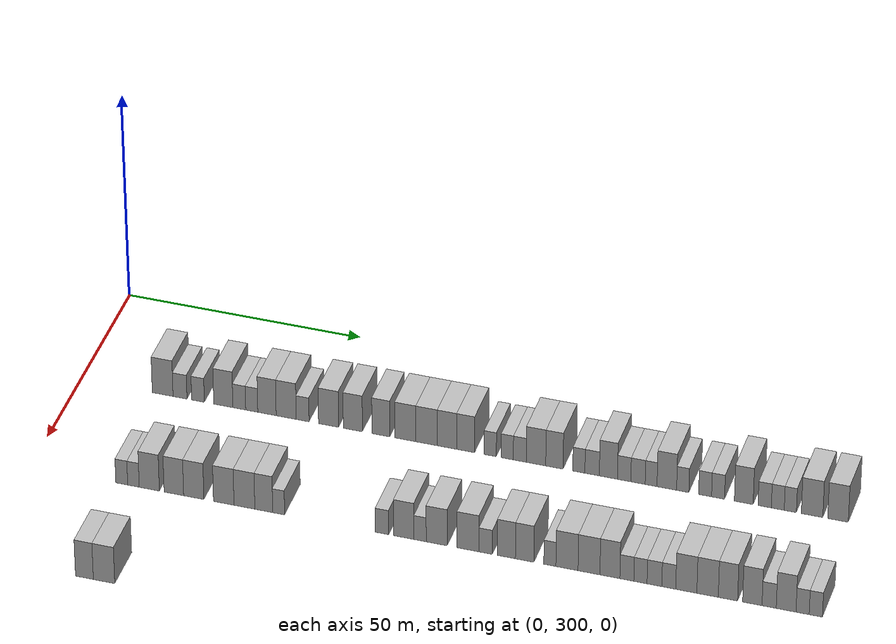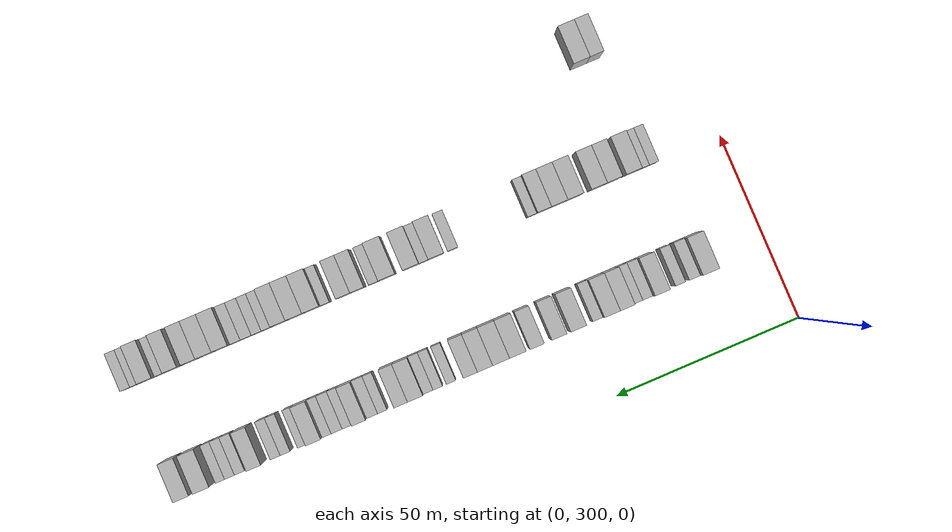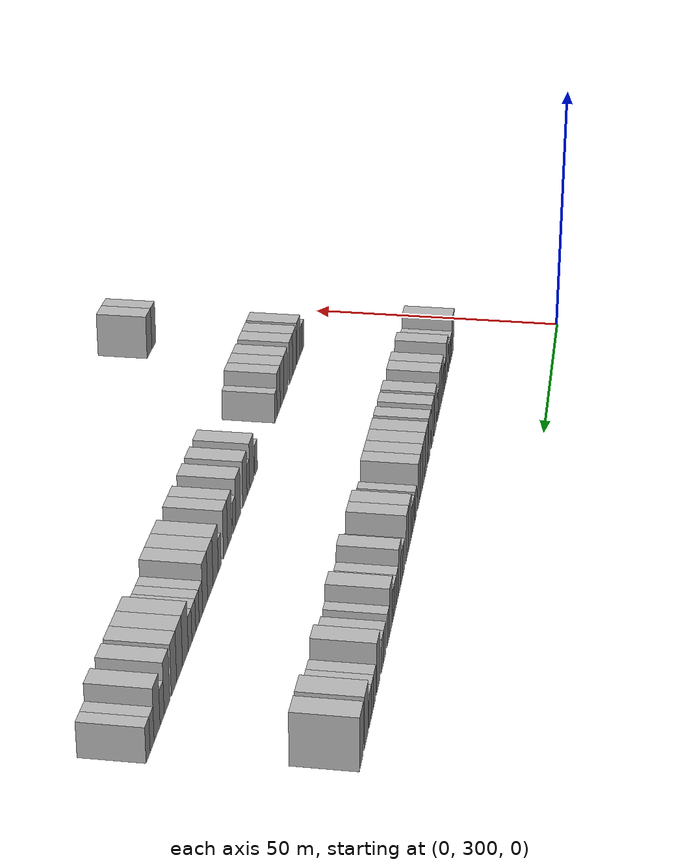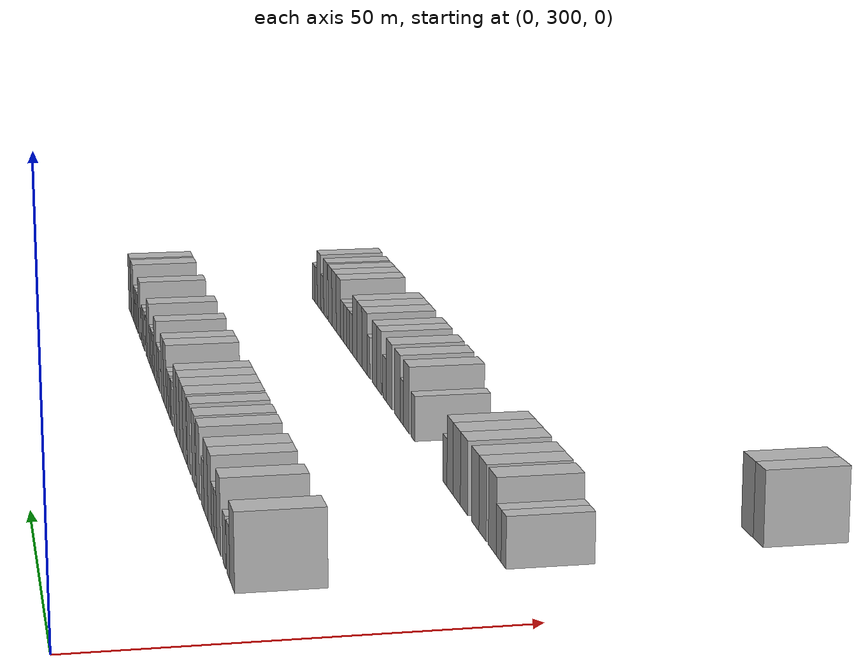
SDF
<sdf version="1.6">
 <world name="default">
  <model name="building_189">
   <static>1</static>
   <pose>25.0000 317.5316 0 0.000000 0.000000 0.000000</pose>
   <link name="link">
    <pose>0 0 4.50 0 0 0</pose>
    <collision name="collision"><geometry><box><size>10.0000 4.4294 9.0000</size></box></geometry></collision>
    <visual name="visual">
     <cast_shadows>0</cast_shadows>
     <geometry><box><size>10.0000 4.4294 9.0000</size></box></geometry>
     <material>
      <script>
       <uri>model://HANNAS_wall/materials/scripts</uri>
       <uri>model://HANNAS_wall/materials/textures</uri>
       <name>vrc/HANNAS_wall</name>
      </script>
     </material>
    </visual>
   </link>
  </model>
  <model name="building_190">
   <static>1</static>
   <pose>25.0000 321.2333 0 0.000000 0.000000 0.000000</pose>
   <link name="link">
    <pose>0 0 3.00 0 0 0</pose>
    <collision name="collision"><geometry><box><size>10.0000 2.9739 6.0000</size></box></geometry></collision>
    <visual name="visual">
     <cast_shadows>0</cast_shadows>
     <geometry><box><size>10.0000 2.9739 6.0000</size></box></geometry>
     <material>
      <script>
       <uri>model://HANNAS_wall/materials/scripts</uri>
       <uri>model://HANNAS_wall/materials/textures</uri>
       <name>vrc/HANNAS_wall</name>
      </script>
     </material>
    </visual>
   </link>
  </model>
  <model name="building_191">
   <static>1</static>
   <pose>25.0000 325.0715 0 0.000000 0.000000 0.000000</pose>
   <link name="link">
    <pose>0 0 3.00 0 0 0</pose>
    <collision name="collision"><geometry><box><size>10.0000 2.7024 6.0000</size></box></geometry></collision>
    <visual name="visual">
     <cast_shadows>0</cast_shadows>
     <geometry><box><size>10.0000 2.7024 6.0000</size></box></geometry>
     <material>
      <script>
       <uri>model://HANNAS_wall/materials/scripts</uri>
       <uri>model://HANNAS_wall/materials/textures</uri>
       <name>vrc/HANNAS_wall</name>
      </script>
     </material>
    </visual>
   </link>
  </model>
  <model name="building_192">
   <static>1</static>
   <pose>25.0000 330.4566 0 0.000000 0.000000 0.000000</pose>
   <link name="link">
    <pose>0 0 4.50 0 0 0</pose>
    <collision name="collision"><geometry><box><size>10.0000 4.0677 9.0000</size></box></geometry></collision>
    <visual name="visual">
     <cast_shadows>0</cast_shadows>
     <geometry><box><size>10.0000 4.0677 9.0000</size></box></geometry>
     <material>
      <script>
       <uri>model://HANNAS_wall/materials/scripts</uri>
       <uri>model://HANNAS_wall/materials/textures</uri>
       <name>vrc/HANNAS_wall</name>
      </script>
     </material>
    </visual>
   </link>
  </model>
  <model name="building_193">
   <static>1</static>
   <pose>25.0000 333.8550 0 0.000000 0.000000 0.000000</pose>
   <link name="link">
    <pose>0 0 3.00 0 0 0</pose>
    <collision name="collision"><geometry><box><size>10.0000 2.7291 6.0000</size></box></geometry></collision>
    <visual name="visual">
     <cast_shadows>0</cast_shadows>
     <geometry><box><size>10.0000 2.7291 6.0000</size></box></geometry>
     <material>
      <script>
       <uri>model://HANNAS_wall/materials/scripts</uri>
       <uri>model://HANNAS_wall/materials/textures</uri>
       <name>vrc/HANNAS_wall</name>
      </script>
     </material>
    </visual>
   </link>
  </model>
  <model name="building_194">
   <static>1</static>
   <pose>25.0000 336.4991 0 0.000000 0.000000 0.000000</pose>
   <link name="link">
    <pose>0 0 3.00 0 0 0</pose>
    <collision name="collision"><geometry><box><size>10.0000 2.5592 6.0000</size></box></geometry></collision>
    <visual name="visual">
     <cast_shadows>0</cast_shadows>
     <geometry><box><size>10.0000 2.5592 6.0000</size></box></geometry>
     <material>
      <script>
       <uri>model://HANNAS_wall/materials/scripts</uri>
       <uri>model://HANNAS_wall/materials/textures</uri>
       <name>vrc/HANNAS_wall</name>
      </script>
     </material>
    </visual>
   </link>
  </model>
  <model name="building_195">
   <static>1</static>
   <pose>25.0000 339.7267 0 0.000000 0.000000 0.000000</pose>
   <link name="link">
    <pose>0 0 4.50 0 0 0</pose>
    <collision name="collision"><geometry><box><size>10.0000 3.8960 9.0000</size></box></geometry></collision>
    <visual name="visual">
     <cast_shadows>0</cast_shadows>
     <geometry><box><size>10.0000 3.8960 9.0000</size></box></geometry>
     <material>
      <script>
       <uri>model://HANNAS_wall/materials/scripts</uri>
       <uri>model://HANNAS_wall/materials/textures</uri>
       <name>vrc/HANNAS_wall</name>
      </script>
     </material>
    </visual>
   </link>
  </model>
  <model name="building_196">
   <static>1</static>
   <pose>25.0000 343.7983 0 0.000000 0.000000 0.000000</pose>
   <link name="link">
    <pose>0 0 4.50 0 0 0</pose>
    <collision name="collision"><geometry><box><size>10.0000 4.2473 9.0000</size></box></geometry></collision>
    <visual name="visual">
     <cast_shadows>0</cast_shadows>
     <geometry><box><size>10.0000 4.2473 9.0000</size></box></geometry>
     <material>
      <script>
       <uri>model://HANNAS_wall/materials/scripts</uri>
       <uri>model://HANNAS_wall/materials/textures</uri>
       <name>vrc/HANNAS_wall</name>
      </script>
     </material>
    </visual>
   </link>
  </model>
  <model name="building_197">
   <static>1</static>
   <pose>25.0000 347.2807 0 0.000000 0.000000 0.000000</pose>
   <link name="link">
    <pose>0 0 3.00 0 0 0</pose>
    <collision name="collision"><geometry><box><size>10.0000 2.7175 6.0000</size></box></geometry></collision>
    <visual name="visual">
     <cast_shadows>0</cast_shadows>
     <geometry><box><size>10.0000 2.7175 6.0000</size></box></geometry>
     <material>
      <script>
       <uri>model://HANNAS_wall/materials/scripts</uri>
       <uri>model://HANNAS_wall/materials/textures</uri>
       <name>vrc/HANNAS_wall</name>
      </script>
     </material>
    </visual>
   </link>
  </model>
  <model name="building_198">
   <static>1</static>
   <pose>25.0000 352.7499 0 0.000000 0.000000 0.000000</pose>
   <link name="link">
    <pose>0 0 4.50 0 0 0</pose>
    <collision name="collision"><geometry><box><size>10.0000 4.2210 9.0000</size></box></geometry></collision>
    <visual name="visual">
     <cast_shadows>0</cast_shadows>
     <geometry><box><size>10.0000 4.2210 9.0000</size></box></geometry>
     <material>
      <script>
       <uri>model://HANNAS_wall/materials/scripts</uri>
       <uri>model://HANNAS_wall/materials/textures</uri>
       <name>vrc/HANNAS_wall</name>
      </script>
     </material>
    </visual>
   </link>
  </model>
  <model name="building_199">
   <static>1</static>
   <pose>25.0000 357.8713 0 0.000000 0.000000 0.000000</pose>
   <link name="link">
    <pose>0 0 4.50 0 0 0</pose>
    <collision name="collision"><geometry><box><size>10.0000 4.0218 9.0000</size></box></geometry></collision>
    <visual name="visual">
     <cast_shadows>0</cast_shadows>
     <geometry><box><size>10.0000 4.0218 9.0000</size></box></geometry>
     <material>
      <script>
       <uri>model://HANNAS_wall/materials/scripts</uri>
       <uri>model://HANNAS_wall/materials/textures</uri>
       <name>vrc/HANNAS_wall</name>
      </script>
     </material>
    </visual>
   </link>
  </model>
  <model name="building_200">
   <static>1</static>
   <pose>25.0000 363.7776 0 0.000000 0.000000 0.000000</pose>
   <link name="link">
    <pose>0 0 4.50 0 0 0</pose>
    <collision name="collision"><geometry><box><size>10.0000 3.7909 9.0000</size></box></geometry></collision>
    <visual name="visual">
     <cast_shadows>0</cast_shadows>
     <geometry><box><size>10.0000 3.7909 9.0000</size></box></geometry>
     <material>
      <script>
       <uri>model://HANNAS_wall/materials/scripts</uri>
       <uri>model://HANNAS_wall/materials/textures</uri>
       <name>vrc/HANNAS_wall</name>
      </script>
     </material>
    </visual>
   </link>
  </model>
  <model name="building_201">
   <static>1</static>
   <pose>25.0000 368.8824 0 0.000000 0.000000 0.000000</pose>
   <link name="link">
    <pose>0 0 4.50 0 0 0</pose>
    <collision name="collision"><geometry><box><size>10.0000 4.4186 9.0000</size></box></geometry></collision>
    <visual name="visual">
     <cast_shadows>0</cast_shadows>
     <geometry><box><size>10.0000 4.4186 9.0000</size></box></geometry>
     <material>
      <script>
       <uri>model://HANNAS_wall/materials/scripts</uri>
       <uri>model://HANNAS_wall/materials/textures</uri>
       <name>vrc/HANNAS_wall</name>
      </script>
     </material>
    </visual>
   </link>
  </model>
  <model name="building_202">
   <static>1</static>
   <pose>25.0000 373.3284 0 0.000000 0.000000 0.000000</pose>
   <link name="link">
    <pose>0 0 4.50 0 0 0</pose>
    <collision name="collision"><geometry><box><size>10.0000 4.4735 9.0000</size></box></geometry></collision>
    <visual name="visual">
     <cast_shadows>0</cast_shadows>
     <geometry><box><size>10.0000 4.4735 9.0000</size></box></geometry>
     <material>
      <script>
       <uri>model://HANNAS_wall/materials/scripts</uri>
       <uri>model://HANNAS_wall/materials/textures</uri>
       <name>vrc/HANNAS_wall</name>
      </script>
     </material>
    </visual>
   </link>
  </model>
  <model name="building_203">
   <static>1</static>
   <pose>25.0000 377.6011 0 0.000000 0.000000 0.000000</pose>
   <link name="link">
    <pose>0 0 4.50 0 0 0</pose>
    <collision name="collision"><geometry><box><size>10.0000 4.0720 9.0000</size></box></geometry></collision>
    <visual name="visual">
     <cast_shadows>0</cast_shadows>
     <geometry><box><size>10.0000 4.0720 9.0000</size></box></geometry>
     <material>
      <script>
       <uri>model://HANNAS_wall/materials/scripts</uri>
       <uri>model://HANNAS_wall/materials/textures</uri>
       <name>vrc/HANNAS_wall</name>
      </script>
     </material>
    </visual>
   </link>
  </model>
  <model name="building_204">
   <static>1</static>
   <pose>25.0000 381.5115 0 0.000000 0.000000 0.000000</pose>
   <link name="link">
    <pose>0 0 4.50 0 0 0</pose>
    <collision name="collision"><geometry><box><size>10.0000 3.7486 9.0000</size></box></geometry></collision>
    <visual name="visual">
     <cast_shadows>0</cast_shadows>
     <geometry><box><size>10.0000 3.7486 9.0000</size></box></geometry>
     <material>
      <script>
       <uri>model://HANNAS_wall/materials/scripts</uri>
       <uri>model://HANNAS_wall/materials/textures</uri>
       <name>vrc/HANNAS_wall</name>
      </script>
     </material>
    </visual>
   </link>
  </model>
  <model name="building_205">
   <static>1</static>
   <pose>25.0000 386.6459 0 0.000000 0.000000 0.000000</pose>
   <link name="link">
    <pose>0 0 3.00 0 0 0</pose>
    <collision name="collision"><geometry><box><size>10.0000 2.5202 6.0000</size></box></geometry></collision>
    <visual name="visual">
     <cast_shadows>0</cast_shadows>
     <geometry><box><size>10.0000 2.5202 6.0000</size></box></geometry>
     <material>
      <script>
       <uri>model://HANNAS_wall/materials/scripts</uri>
       <uri>model://HANNAS_wall/materials/textures</uri>
       <name>vrc/HANNAS_wall</name>
      </script>
     </material>
    </visual>
   </link>
  </model>
  <model name="building_206">
   <static>1</static>
   <pose>25.0000 390.1766 0 0.000000 0.000000 0.000000</pose>
   <link name="link">
    <pose>0 0 3.00 0 0 0</pose>
    <collision name="collision"><geometry><box><size>10.0000 2.5413 6.0000</size></box></geometry></collision>
    <visual name="visual">
     <cast_shadows>0</cast_shadows>
     <geometry><box><size>10.0000 2.5413 6.0000</size></box></geometry>
     <material>
      <script>
       <uri>model://HANNAS_wall/materials/scripts</uri>
       <uri>model://HANNAS_wall/materials/textures</uri>
       <name>vrc/HANNAS_wall</name>
      </script>
     </material>
    </visual>
   </link>
  </model>
  <model name="building_207">
   <static>1</static>
   <pose>25.0000 392.7797 0 0.000000 0.000000 0.000000</pose>
   <link name="link">
    <pose>0 0 3.00 0 0 0</pose>
    <collision name="collision"><geometry><box><size>10.0000 2.6650 6.0000</size></box></geometry></collision>
    <visual name="visual">
     <cast_shadows>0</cast_shadows>
     <geometry><box><size>10.0000 2.6650 6.0000</size></box></geometry>
     <material>
      <script>
       <uri>model://HANNAS_wall/materials/scripts</uri>
       <uri>model://HANNAS_wall/materials/textures</uri>
       <name>vrc/HANNAS_wall</name>
      </script>
     </material>
    </visual>
   </link>
  </model>
  <model name="building_208">
   <static>1</static>
   <pose>25.0000 396.1371 0 0.000000 0.000000 0.000000</pose>
   <link name="link">
    <pose>0 0 4.50 0 0 0</pose>
    <collision name="collision"><geometry><box><size>10.0000 4.0498 9.0000</size></box></geometry></collision>
    <visual name="visual">
     <cast_shadows>0</cast_shadows>
     <geometry><box><size>10.0000 4.0498 9.0000</size></box></geometry>
     <material>
      <script>
       <uri>model://HANNAS_wall/materials/scripts</uri>
       <uri>model://HANNAS_wall/materials/textures</uri>
       <name>vrc/HANNAS_wall</name>
      </script>
     </material>
    </visual>
   </link>
  </model>
  <model name="building_209">
   <static>1</static>
   <pose>25.0000 399.9664 0 0.000000 0.000000 0.000000</pose>
   <link name="link">
    <pose>0 0 4.50 0 0 0</pose>
    <collision name="collision"><geometry><box><size>10.0000 3.6089 9.0000</size></box></geometry></collision>
    <visual name="visual">
     <cast_shadows>0</cast_shadows>
     <geometry><box><size>10.0000 3.6089 9.0000</size></box></geometry>
     <material>
      <script>
       <uri>model://HANNAS_wall/materials/scripts</uri>
       <uri>model://HANNAS_wall/materials/textures</uri>
       <name>vrc/HANNAS_wall</name>
      </script>
     </material>
    </visual>
   </link>
  </model>
  <model name="building_210">
   <static>1</static>
   <pose>25.0000 405.0241 0 0.000000 0.000000 0.000000</pose>
   <link name="link">
    <pose>0 0 3.00 0 0 0</pose>
    <collision name="collision"><geometry><box><size>10.0000 2.5063 6.0000</size></box></geometry></collision>
    <visual name="visual">
     <cast_shadows>0</cast_shadows>
     <geometry><box><size>10.0000 2.5063 6.0000</size></box></geometry>
     <material>
      <script>
       <uri>model://HANNAS_wall/materials/scripts</uri>
       <uri>model://HANNAS_wall/materials/textures</uri>
       <name>vrc/HANNAS_wall</name>
      </script>
     </material>
    </visual>
   </link>
  </model>
  <model name="building_211">
   <static>1</static>
   <pose>25.0000 407.7696 0 0.000000 0.000000 0.000000</pose>
   <link name="link">
    <pose>0 0 3.00 0 0 0</pose>
    <collision name="collision"><geometry><box><size>10.0000 2.9848 6.0000</size></box></geometry></collision>
    <visual name="visual">
     <cast_shadows>0</cast_shadows>
     <geometry><box><size>10.0000 2.9848 6.0000</size></box></geometry>
     <material>
      <script>
       <uri>model://HANNAS_wall/materials/scripts</uri>
       <uri>model://HANNAS_wall/materials/textures</uri>
       <name>vrc/HANNAS_wall</name>
      </script>
     </material>
    </visual>
   </link>
  </model>
  <model name="building_212">
   <static>1</static>
   <pose>25.0000 411.1289 0 0.000000 0.000000 0.000000</pose>
   <link name="link">
    <pose>0 0 4.50 0 0 0</pose>
    <collision name="collision"><geometry><box><size>10.0000 3.7337 9.0000</size></box></geometry></collision>
    <visual name="visual">
     <cast_shadows>0</cast_shadows>
     <geometry><box><size>10.0000 3.7337 9.0000</size></box></geometry>
     <material>
      <script>
       <uri>model://HANNAS_wall/materials/scripts</uri>
       <uri>model://HANNAS_wall/materials/textures</uri>
       <name>vrc/HANNAS_wall</name>
      </script>
     </material>
    </visual>
   </link>
  </model>
  <model name="building_213">
   <static>1</static>
   <pose>25.0000 414.3785 0 0.000000 0.000000 0.000000</pose>
   <link name="link">
    <pose>0 0 3.00 0 0 0</pose>
    <collision name="collision"><geometry><box><size>10.0000 2.7655 6.0000</size></box></geometry></collision>
    <visual name="visual">
     <cast_shadows>0</cast_shadows>
     <geometry><box><size>10.0000 2.7655 6.0000</size></box></geometry>
     <material>
      <script>
       <uri>model://HANNAS_wall/materials/scripts</uri>
       <uri>model://HANNAS_wall/materials/textures</uri>
       <name>vrc/HANNAS_wall</name>
      </script>
     </material>
    </visual>
   </link>
  </model>
  <model name="building_214">
   <static>1</static>
   <pose>25.0000 417.2346 0 0.000000 0.000000 0.000000</pose>
   <link name="link">
    <pose>0 0 3.00 0 0 0</pose>
    <collision name="collision"><geometry><box><size>10.0000 2.9469 6.0000</size></box></geometry></collision>
    <visual name="visual">
     <cast_shadows>0</cast_shadows>
     <geometry><box><size>10.0000 2.9469 6.0000</size></box></geometry>
     <material>
      <script>
       <uri>model://HANNAS_wall/materials/scripts</uri>
       <uri>model://HANNAS_wall/materials/textures</uri>
       <name>vrc/HANNAS_wall</name>
      </script>
     </material>
    </visual>
   </link>
  </model>
  <model name="building_215">
   <static>1</static>
   <pose>25.0000 419.9246 0 0.000000 0.000000 0.000000</pose>
   <link name="link">
    <pose>0 0 3.00 0 0 0</pose>
    <collision name="collision"><geometry><box><size>10.0000 2.4331 6.0000</size></box></geometry></collision>
    <visual name="visual">
     <cast_shadows>0</cast_shadows>
     <geometry><box><size>10.0000 2.4331 6.0000</size></box></geometry>
     <material>
      <script>
       <uri>model://HANNAS_wall/materials/scripts</uri>
       <uri>model://HANNAS_wall/materials/textures</uri>
       <name>vrc/HANNAS_wall</name>
      </script>
     </material>
    </visual>
   </link>
  </model>
  <model name="building_216">
   <static>1</static>
   <pose>25.0000 423.1558 0 0.000000 0.000000 0.000000</pose>
   <link name="link">
    <pose>0 0 4.50 0 0 0</pose>
    <collision name="collision"><geometry><box><size>10.0000 4.0292 9.0000</size></box></geometry></collision>
    <visual name="visual">
     <cast_shadows>0</cast_shadows>
     <geometry><box><size>10.0000 4.0292 9.0000</size></box></geometry>
     <material>
      <script>
       <uri>model://HANNAS_wall/materials/scripts</uri>
       <uri>model://HANNAS_wall/materials/textures</uri>
       <name>vrc/HANNAS_wall</name>
      </script>
     </material>
    </visual>
   </link>
  </model>
  <model name="building_217">
   <static>1</static>
   <pose>25.0000 426.4271 0 0.000000 0.000000 0.000000</pose>
   <link name="link">
    <pose>0 0 3.00 0 0 0</pose>
    <collision name="collision"><geometry><box><size>10.0000 2.5135 6.0000</size></box></geometry></collision>
    <visual name="visual">
     <cast_shadows>0</cast_shadows>
     <geometry><box><size>10.0000 2.5135 6.0000</size></box></geometry>
     <material>
      <script>
       <uri>model://HANNAS_wall/materials/scripts</uri>
       <uri>model://HANNAS_wall/materials/textures</uri>
       <name>vrc/HANNAS_wall</name>
      </script>
     </material>
    </visual>
   </link>
  </model>
  <model name="building_218">
   <static>1</static>
   <pose>25.0000 431.0087 0 0.000000 0.000000 0.000000</pose>
   <link name="link">
    <pose>0 0 3.00 0 0 0</pose>
    <collision name="collision"><geometry><box><size>10.0000 2.6497 6.0000</size></box></geometry></collision>
    <visual name="visual">
     <cast_shadows>0</cast_shadows>
     <geometry><box><size>10.0000 2.6497 6.0000</size></box></geometry>
     <material>
      <script>
       <uri>model://HANNAS_wall/materials/scripts</uri>
       <uri>model://HANNAS_wall/materials/textures</uri>
       <name>vrc/HANNAS_wall</name>
      </script>
     </material>
    </visual>
   </link>
  </model>
  <model name="building_219">
   <static>1</static>
   <pose>25.0000 433.6624 0 0.000000 0.000000 0.000000</pose>
   <link name="link">
    <pose>0 0 3.00 0 0 0</pose>
    <collision name="collision"><geometry><box><size>10.0000 2.6577 6.0000</size></box></geometry></collision>
    <visual name="visual">
     <cast_shadows>0</cast_shadows>
     <geometry><box><size>10.0000 2.6577 6.0000</size></box></geometry>
     <material>
      <script>
       <uri>model://HANNAS_wall/materials/scripts</uri>
       <uri>model://HANNAS_wall/materials/textures</uri>
       <name>vrc/HANNAS_wall</name>
      </script>
     </material>
    </visual>
   </link>
  </model>
  <model name="building_220">
   <static>1</static>
   <pose>25.0000 438.9099 0 0.000000 0.000000 0.000000</pose>
   <link name="link">
    <pose>0 0 4.50 0 0 0</pose>
    <collision name="collision"><geometry><box><size>10.0000 3.8373 9.0000</size></box></geometry></collision>
    <visual name="visual">
     <cast_shadows>0</cast_shadows>
     <geometry><box><size>10.0000 3.8373 9.0000</size></box></geometry>
     <material>
      <script>
       <uri>model://HANNAS_wall/materials/scripts</uri>
       <uri>model://HANNAS_wall/materials/textures</uri>
       <name>vrc/HANNAS_wall</name>
      </script>
     </material>
    </visual>
   </link>
  </model>
  <model name="building_221">
   <static>1</static>
   <pose>25.0000 443.1814 0 0.000000 0.000000 0.000000</pose>
   <link name="link">
    <pose>0 0 3.00 0 0 0</pose>
    <collision name="collision"><geometry><box><size>10.0000 2.7058 6.0000</size></box></geometry></collision>
    <visual name="visual">
     <cast_shadows>0</cast_shadows>
     <geometry><box><size>10.0000 2.7058 6.0000</size></box></geometry>
     <material>
      <script>
       <uri>model://HANNAS_wall/materials/scripts</uri>
       <uri>model://HANNAS_wall/materials/textures</uri>
       <name>vrc/HANNAS_wall</name>
      </script>
     </material>
    </visual>
   </link>
  </model>
  <model name="building_222">
   <static>1</static>
   <pose>25.0000 445.8504 0 0.000000 0.000000 0.000000</pose>
   <link name="link">
    <pose>0 0 3.00 0 0 0</pose>
    <collision name="collision"><geometry><box><size>10.0000 2.6323 6.0000</size></box></geometry></collision>
    <visual name="visual">
     <cast_shadows>0</cast_shadows>
     <geometry><box><size>10.0000 2.6323 6.0000</size></box></geometry>
     <material>
      <script>
       <uri>model://HANNAS_wall/materials/scripts</uri>
       <uri>model://HANNAS_wall/materials/textures</uri>
       <name>vrc/HANNAS_wall</name>
      </script>
     </material>
    </visual>
   </link>
  </model>
  <model name="building_223">
   <static>1</static>
   <pose>25.0000 448.4021 0 0.000000 0.000000 0.000000</pose>
   <link name="link">
    <pose>0 0 3.00 0 0 0</pose>
    <collision name="collision"><geometry><box><size>10.0000 2.4711 6.0000</size></box></geometry></collision>
    <visual name="visual">
     <cast_shadows>0</cast_shadows>
     <geometry><box><size>10.0000 2.4711 6.0000</size></box></geometry>
     <material>
      <script>
       <uri>model://HANNAS_wall/materials/scripts</uri>
       <uri>model://HANNAS_wall/materials/textures</uri>
       <name>vrc/HANNAS_wall</name>
      </script>
     </material>
    </visual>
   </link>
  </model>
  <model name="building_224">
   <static>1</static>
   <pose>25.0000 452.8222 0 0.000000 0.000000 0.000000</pose>
   <link name="link">
    <pose>0 0 4.50 0 0 0</pose>
    <collision name="collision"><geometry><box><size>10.0000 4.3692 9.0000</size></box></geometry></collision>
    <visual name="visual">
     <cast_shadows>0</cast_shadows>
     <geometry><box><size>10.0000 4.3692 9.0000</size></box></geometry>
     <material>
      <script>
       <uri>model://HANNAS_wall/materials/scripts</uri>
       <uri>model://HANNAS_wall/materials/textures</uri>
       <name>vrc/HANNAS_wall</name>
      </script>
     </material>
    </visual>
   </link>
  </model>
  <model name="building_225">
   <static>1</static>
   <pose>25.0000 458.0899 0 0.000000 0.000000 0.000000</pose>
   <link name="link">
    <pose>0 0 4.50 0 0 0</pose>
    <collision name="collision"><geometry><box><size>10.0000 4.1662 9.0000</size></box></geometry></collision>
    <visual name="visual">
     <cast_shadows>0</cast_shadows>
     <geometry><box><size>10.0000 4.1662 9.0000</size></box></geometry>
     <material>
      <script>
       <uri>model://HANNAS_wall/materials/scripts</uri>
       <uri>model://HANNAS_wall/materials/textures</uri>
       <name>vrc/HANNAS_wall</name>
      </script>
     </material>
    </visual>
   </link>
  </model>
  <model name="building_422">
   <static>1</static>
   <pose>55.0000 319.2631 0 0.000000 0.000000 0.000000</pose>
   <link name="link">
    <pose>0 0 3.00 0 0 0</pose>
    <collision name="collision"><geometry><box><size>10.0000 2.4865 6.0000</size></box></geometry></collision>
    <visual name="visual">
     <cast_shadows>0</cast_shadows>
     <geometry><box><size>10.0000 2.4865 6.0000</size></box></geometry>
     <material>
      <script>
       <uri>model://HANNAS_wall/materials/scripts</uri>
       <uri>model://HANNAS_wall/materials/textures</uri>
       <name>vrc/HANNAS_wall</name>
      </script>
     </material>
    </visual>
   </link>
  </model>
  <model name="building_423">
   <static>1</static>
   <pose>55.0000 321.7183 0 0.000000 0.000000 0.000000</pose>
   <link name="link">
    <pose>0 0 3.00 0 0 0</pose>
    <collision name="collision"><geometry><box><size>10.0000 2.4237 6.0000</size></box></geometry></collision>
    <visual name="visual">
     <cast_shadows>0</cast_shadows>
     <geometry><box><size>10.0000 2.4237 6.0000</size></box></geometry>
     <material>
      <script>
       <uri>model://HANNAS_wall/materials/scripts</uri>
       <uri>model://HANNAS_wall/materials/textures</uri>
       <name>vrc/HANNAS_wall</name>
      </script>
     </material>
    </visual>
   </link>
  </model>
  <model name="building_424">
   <static>1</static>
   <pose>55.0000 325.0389 0 0.000000 0.000000 0.000000</pose>
   <link name="link">
    <pose>0 0 4.50 0 0 0</pose>
    <collision name="collision"><geometry><box><size>10.0000 4.2175 9.0000</size></box></geometry></collision>
    <visual name="visual">
     <cast_shadows>0</cast_shadows>
     <geometry><box><size>10.0000 4.2175 9.0000</size></box></geometry>
     <material>
      <script>
       <uri>model://HANNAS_wall/materials/scripts</uri>
       <uri>model://HANNAS_wall/materials/textures</uri>
       <name>vrc/HANNAS_wall</name>
      </script>
     </material>
    </visual>
   </link>
  </model>
  <model name="building_425">
   <static>1</static>
   <pose>55.0000 330.1897 0 0.000000 0.000000 0.000000</pose>
   <link name="link">
    <pose>0 0 4.50 0 0 0</pose>
    <collision name="collision"><geometry><box><size>10.0000 4.0840 9.0000</size></box></geometry></collision>
    <visual name="visual">
     <cast_shadows>0</cast_shadows>
     <geometry><box><size>10.0000 4.0840 9.0000</size></box></geometry>
     <material>
      <script>
       <uri>model://HANNAS_wall/materials/scripts</uri>
       <uri>model://HANNAS_wall/materials/textures</uri>
       <name>vrc/HANNAS_wall</name>
      </script>
     </material>
    </visual>
   </link>
  </model>
  <model name="building_426">
   <static>1</static>
   <pose>55.0000 334.3448 0 0.000000 0.000000 0.000000</pose>
   <link name="link">
    <pose>0 0 4.50 0 0 0</pose>
    <collision name="collision"><geometry><box><size>10.0000 4.2263 9.0000</size></box></geometry></collision>
    <visual name="visual">
     <cast_shadows>0</cast_shadows>
     <geometry><box><size>10.0000 4.2263 9.0000</size></box></geometry>
     <material>
      <script>
       <uri>model://HANNAS_wall/materials/scripts</uri>
       <uri>model://HANNAS_wall/materials/textures</uri>
       <name>vrc/HANNAS_wall</name>
      </script>
     </material>
    </visual>
   </link>
  </model>
  <model name="building_427">
   <static>1</static>
   <pose>55.0000 340.5961 0 0.000000 0.000000 0.000000</pose>
   <link name="link">
    <pose>0 0 4.50 0 0 0</pose>
    <collision name="collision"><geometry><box><size>10.0000 4.2762 9.0000</size></box></geometry></collision>
    <visual name="visual">
     <cast_shadows>0</cast_shadows>
     <geometry><box><size>10.0000 4.2762 9.0000</size></box></geometry>
     <material>
      <script>
       <uri>model://HANNAS_wall/materials/scripts</uri>
       <uri>model://HANNAS_wall/materials/textures</uri>
       <name>vrc/HANNAS_wall</name>
      </script>
     </material>
    </visual>
   </link>
  </model>
  <model name="building_428">
   <static>1</static>
   <pose>55.0000 344.9000 0 0.000000 0.000000 0.000000</pose>
   <link name="link">
    <pose>0 0 4.50 0 0 0</pose>
    <collision name="collision"><geometry><box><size>10.0000 4.3315 9.0000</size></box></geometry></collision>
    <visual name="visual">
     <cast_shadows>0</cast_shadows>
     <geometry><box><size>10.0000 4.3315 9.0000</size></box></geometry>
     <material>
      <script>
       <uri>model://HANNAS_wall/materials/scripts</uri>
       <uri>model://HANNAS_wall/materials/textures</uri>
       <name>vrc/HANNAS_wall</name>
      </script>
     </material>
    </visual>
   </link>
  </model>
  <model name="building_429">
   <static>1</static>
   <pose>55.0000 348.9208 0 0.000000 0.000000 0.000000</pose>
   <link name="link">
    <pose>0 0 4.50 0 0 0</pose>
    <collision name="collision"><geometry><box><size>10.0000 3.7101 9.0000</size></box></geometry></collision>
    <visual name="visual">
     <cast_shadows>0</cast_shadows>
     <geometry><box><size>10.0000 3.7101 9.0000</size></box></geometry>
     <material>
      <script>
       <uri>model://HANNAS_wall/materials/scripts</uri>
       <uri>model://HANNAS_wall/materials/textures</uri>
       <name>vrc/HANNAS_wall</name>
      </script>
     </material>
    </visual>
   </link>
  </model>
  <model name="building_430">
   <static>1</static>
   <pose>55.0000 352.0100 0 0.000000 0.000000 0.000000</pose>
   <link name="link">
    <pose>0 0 3.00 0 0 0</pose>
    <collision name="collision"><geometry><box><size>10.0000 2.4683 6.0000</size></box></geometry></collision>
    <visual name="visual">
     <cast_shadows>0</cast_shadows>
     <geometry><box><size>10.0000 2.4683 6.0000</size></box></geometry>
     <material>
      <script>
       <uri>model://HANNAS_wall/materials/scripts</uri>
       <uri>model://HANNAS_wall/materials/textures</uri>
       <name>vrc/HANNAS_wall</name>
      </script>
     </material>
    </visual>
   </link>
  </model>
  <model name="building_431">
   <static>1</static>
   <pose>55.0000 373.3662 0 0.000000 0.000000 0.000000</pose>
   <link name="link">
    <pose>0 0 3.00 0 0 0</pose>
    <collision name="collision"><geometry><box><size>10.0000 2.7481 6.0000</size></box></geometry></collision>
    <visual name="visual">
     <cast_shadows>0</cast_shadows>
     <geometry><box><size>10.0000 2.7481 6.0000</size></box></geometry>
     <material>
      <script>
       <uri>model://HANNAS_wall/materials/scripts</uri>
       <uri>model://HANNAS_wall/materials/textures</uri>
       <name>vrc/HANNAS_wall</name>
      </script>
     </material>
    </visual>
   </link>
  </model>
  <model name="building_432">
   <static>1</static>
   <pose>55.0000 377.8293 0 0.000000 0.000000 0.000000</pose>
   <link name="link">
    <pose>0 0 4.50 0 0 0</pose>
    <collision name="collision"><geometry><box><size>10.0000 4.1781 9.0000</size></box></geometry></collision>
    <visual name="visual">
     <cast_shadows>0</cast_shadows>
     <geometry><box><size>10.0000 4.1781 9.0000</size></box></geometry>
     <material>
      <script>
       <uri>model://HANNAS_wall/materials/scripts</uri>
       <uri>model://HANNAS_wall/materials/textures</uri>
       <name>vrc/HANNAS_wall</name>
      </script>
     </material>
    </visual>
   </link>
  </model>
  <model name="building_433">
   <static>1</static>
   <pose>55.0000 381.1787 0 0.000000 0.000000 0.000000</pose>
   <link name="link">
    <pose>0 0 3.00 0 0 0</pose>
    <collision name="collision"><geometry><box><size>10.0000 2.5205 6.0000</size></box></geometry></collision>
    <visual name="visual">
     <cast_shadows>0</cast_shadows>
     <geometry><box><size>10.0000 2.5205 6.0000</size></box></geometry>
     <material>
      <script>
       <uri>model://HANNAS_wall/materials/scripts</uri>
       <uri>model://HANNAS_wall/materials/textures</uri>
       <name>vrc/HANNAS_wall</name>
      </script>
     </material>
    </visual>
   </link>
  </model>
  <model name="building_434">
   <static>1</static>
   <pose>55.0000 384.5972 0 0.000000 0.000000 0.000000</pose>
   <link name="link">
    <pose>0 0 4.50 0 0 0</pose>
    <collision name="collision"><geometry><box><size>10.0000 4.3166 9.0000</size></box></geometry></collision>
    <visual name="visual">
     <cast_shadows>0</cast_shadows>
     <geometry><box><size>10.0000 4.3166 9.0000</size></box></geometry>
     <material>
      <script>
       <uri>model://HANNAS_wall/materials/scripts</uri>
       <uri>model://HANNAS_wall/materials/textures</uri>
       <name>vrc/HANNAS_wall</name>
      </script>
     </material>
    </visual>
   </link>
  </model>
  <model name="building_435">
   <static>1</static>
   <pose>55.0000 390.9954 0 0.000000 0.000000 0.000000</pose>
   <link name="link">
    <pose>0 0 4.50 0 0 0</pose>
    <collision name="collision"><geometry><box><size>10.0000 4.4797 9.0000</size></box></geometry></collision>
    <visual name="visual">
     <cast_shadows>0</cast_shadows>
     <geometry><box><size>10.0000 4.4797 9.0000</size></box></geometry>
     <material>
      <script>
       <uri>model://HANNAS_wall/materials/scripts</uri>
       <uri>model://HANNAS_wall/materials/textures</uri>
       <name>vrc/HANNAS_wall</name>
      </script>
     </material>
    </visual>
   </link>
  </model>
  <model name="building_436">
   <static>1</static>
   <pose>55.0000 394.6143 0 0.000000 0.000000 0.000000</pose>
   <link name="link">
    <pose>0 0 3.00 0 0 0</pose>
    <collision name="collision"><geometry><box><size>10.0000 2.7582 6.0000</size></box></geometry></collision>
    <visual name="visual">
     <cast_shadows>0</cast_shadows>
     <geometry><box><size>10.0000 2.7582 6.0000</size></box></geometry>
     <material>
      <script>
       <uri>model://HANNAS_wall/materials/scripts</uri>
       <uri>model://HANNAS_wall/materials/textures</uri>
       <name>vrc/HANNAS_wall</name>
      </script>
     </material>
    </visual>
   </link>
  </model>
  <model name="building_437">
   <static>1</static>
   <pose>55.0000 398.8340 0 0.000000 0.000000 0.000000</pose>
   <link name="link">
    <pose>0 0 4.50 0 0 0</pose>
    <collision name="collision"><geometry><box><size>10.0000 3.6813 9.0000</size></box></geometry></collision>
    <visual name="visual">
     <cast_shadows>0</cast_shadows>
     <geometry><box><size>10.0000 3.6813 9.0000</size></box></geometry>
     <material>
      <script>
       <uri>model://HANNAS_wall/materials/scripts</uri>
       <uri>model://HANNAS_wall/materials/textures</uri>
       <name>vrc/HANNAS_wall</name>
      </script>
     </material>
    </visual>
   </link>
  </model>
  <model name="building_438">
   <static>1</static>
   <pose>55.0000 402.5647 0 0.000000 0.000000 0.000000</pose>
   <link name="link">
    <pose>0 0 4.50 0 0 0</pose>
    <collision name="collision"><geometry><box><size>10.0000 3.7802 9.0000</size></box></geometry></collision>
    <visual name="visual">
     <cast_shadows>0</cast_shadows>
     <geometry><box><size>10.0000 3.7802 9.0000</size></box></geometry>
     <material>
      <script>
       <uri>model://HANNAS_wall/materials/scripts</uri>
       <uri>model://HANNAS_wall/materials/textures</uri>
       <name>vrc/HANNAS_wall</name>
      </script>
     </material>
    </visual>
   </link>
  </model>
  <model name="building_439">
   <static>1</static>
   <pose>55.0000 407.6823 0 0.000000 0.000000 0.000000</pose>
   <link name="link">
    <pose>0 0 3.00 0 0 0</pose>
    <collision name="collision"><geometry><box><size>10.0000 2.4549 6.0000</size></box></geometry></collision>
    <visual name="visual">
     <cast_shadows>0</cast_shadows>
     <geometry><box><size>10.0000 2.4549 6.0000</size></box></geometry>
     <material>
      <script>
       <uri>model://HANNAS_wall/materials/scripts</uri>
       <uri>model://HANNAS_wall/materials/textures</uri>
       <name>vrc/HANNAS_wall</name>
      </script>
     </material>
    </visual>
   </link>
  </model>
  <model name="building_440">
   <static>1</static>
   <pose>55.0000 411.1533 0 0.000000 0.000000 0.000000</pose>
   <link name="link">
    <pose>0 0 4.50 0 0 0</pose>
    <collision name="collision"><geometry><box><size>10.0000 4.4872 9.0000</size></box></geometry></collision>
    <visual name="visual">
     <cast_shadows>0</cast_shadows>
     <geometry><box><size>10.0000 4.4872 9.0000</size></box></geometry>
     <material>
      <script>
       <uri>model://HANNAS_wall/materials/scripts</uri>
       <uri>model://HANNAS_wall/materials/textures</uri>
       <name>vrc/HANNAS_wall</name>
      </script>
     </material>
    </visual>
   </link>
  </model>
  <model name="building_441">
   <static>1</static>
   <pose>55.0000 415.6124 0 0.000000 0.000000 0.000000</pose>
   <link name="link">
    <pose>0 0 4.50 0 0 0</pose>
    <collision name="collision"><geometry><box><size>10.0000 4.4310 9.0000</size></box></geometry></collision>
    <visual name="visual">
     <cast_shadows>0</cast_shadows>
     <geometry><box><size>10.0000 4.4310 9.0000</size></box></geometry>
     <material>
      <script>
       <uri>model://HANNAS_wall/materials/scripts</uri>
       <uri>model://HANNAS_wall/materials/textures</uri>
       <name>vrc/HANNAS_wall</name>
      </script>
     </material>
    </visual>
   </link>
  </model>
  <model name="building_442">
   <static>1</static>
   <pose>55.0000 419.8430 0 0.000000 0.000000 0.000000</pose>
   <link name="link">
    <pose>0 0 4.50 0 0 0</pose>
    <collision name="collision"><geometry><box><size>10.0000 4.0302 9.0000</size></box></geometry></collision>
    <visual name="visual">
     <cast_shadows>0</cast_shadows>
     <geometry><box><size>10.0000 4.0302 9.0000</size></box></geometry>
     <material>
      <script>
       <uri>model://HANNAS_wall/materials/scripts</uri>
       <uri>model://HANNAS_wall/materials/textures</uri>
       <name>vrc/HANNAS_wall</name>
      </script>
     </material>
    </visual>
   </link>
  </model>
  <model name="building_443">
   <static>1</static>
   <pose>55.0000 423.2674 0 0.000000 0.000000 0.000000</pose>
   <link name="link">
    <pose>0 0 3.00 0 0 0</pose>
    <collision name="collision"><geometry><box><size>10.0000 2.8187 6.0000</size></box></geometry></collision>
    <visual name="visual">
     <cast_shadows>0</cast_shadows>
     <geometry><box><size>10.0000 2.8187 6.0000</size></box></geometry>
     <material>
      <script>
       <uri>model://HANNAS_wall/materials/scripts</uri>
       <uri>model://HANNAS_wall/materials/textures</uri>
       <name>vrc/HANNAS_wall</name>
      </script>
     </material>
    </visual>
   </link>
  </model>
  <model name="building_444">
   <static>1</static>
   <pose>55.0000 426.0071 0 0.000000 0.000000 0.000000</pose>
   <link name="link">
    <pose>0 0 3.00 0 0 0</pose>
    <collision name="collision"><geometry><box><size>10.0000 2.6607 6.0000</size></box></geometry></collision>
    <visual name="visual">
     <cast_shadows>0</cast_shadows>
     <geometry><box><size>10.0000 2.6607 6.0000</size></box></geometry>
     <material>
      <script>
       <uri>model://HANNAS_wall/materials/scripts</uri>
       <uri>model://HANNAS_wall/materials/textures</uri>
       <name>vrc/HANNAS_wall</name>
      </script>
     </material>
    </visual>
   </link>
  </model>
  <model name="building_445">
   <static>1</static>
   <pose>55.0000 428.8271 0 0.000000 0.000000 0.000000</pose>
   <link name="link">
    <pose>0 0 3.00 0 0 0</pose>
    <collision name="collision"><geometry><box><size>10.0000 2.9793 6.0000</size></box></geometry></collision>
    <visual name="visual">
     <cast_shadows>0</cast_shadows>
     <geometry><box><size>10.0000 2.9793 6.0000</size></box></geometry>
     <material>
      <script>
       <uri>model://HANNAS_wall/materials/scripts</uri>
       <uri>model://HANNAS_wall/materials/textures</uri>
       <name>vrc/HANNAS_wall</name>
      </script>
     </material>
    </visual>
   </link>
  </model>
  <model name="building_446">
   <static>1</static>
   <pose>55.0000 431.7151 0 0.000000 0.000000 0.000000</pose>
   <link name="link">
    <pose>0 0 3.00 0 0 0</pose>
    <collision name="collision"><geometry><box><size>10.0000 2.7968 6.0000</size></box></geometry></collision>
    <visual name="visual">
     <cast_shadows>0</cast_shadows>
     <geometry><box><size>10.0000 2.7968 6.0000</size></box></geometry>
     <material>
      <script>
       <uri>model://HANNAS_wall/materials/scripts</uri>
       <uri>model://HANNAS_wall/materials/textures</uri>
       <name>vrc/HANNAS_wall</name>
      </script>
     </material>
    </visual>
   </link>
  </model>
  <model name="building_447">
   <static>1</static>
   <pose>55.0000 435.2362 0 0.000000 0.000000 0.000000</pose>
   <link name="link">
    <pose>0 0 4.50 0 0 0</pose>
    <collision name="collision"><geometry><box><size>10.0000 4.2454 9.0000</size></box></geometry></collision>
    <visual name="visual">
     <cast_shadows>0</cast_shadows>
     <geometry><box><size>10.0000 4.2454 9.0000</size></box></geometry>
     <material>
      <script>
       <uri>model://HANNAS_wall/materials/scripts</uri>
       <uri>model://HANNAS_wall/materials/textures</uri>
       <name>vrc/HANNAS_wall</name>
      </script>
     </material>
    </visual>
   </link>
  </model>
  <model name="building_448">
   <static>1</static>
   <pose>55.0000 439.5106 0 0.000000 0.000000 0.000000</pose>
   <link name="link">
    <pose>0 0 4.50 0 0 0</pose>
    <collision name="collision"><geometry><box><size>10.0000 4.3034 9.0000</size></box></geometry></collision>
    <visual name="visual">
     <cast_shadows>0</cast_shadows>
     <geometry><box><size>10.0000 4.3034 9.0000</size></box></geometry>
     <material>
      <script>
       <uri>model://HANNAS_wall/materials/scripts</uri>
       <uri>model://HANNAS_wall/materials/textures</uri>
       <name>vrc/HANNAS_wall</name>
      </script>
     </material>
    </visual>
   </link>
  </model>
  <model name="building_449">
   <static>1</static>
   <pose>55.0000 443.5963 0 0.000000 0.000000 0.000000</pose>
   <link name="link">
    <pose>0 0 4.50 0 0 0</pose>
    <collision name="collision"><geometry><box><size>10.0000 3.8680 9.0000</size></box></geometry></collision>
    <visual name="visual">
     <cast_shadows>0</cast_shadows>
     <geometry><box><size>10.0000 3.8680 9.0000</size></box></geometry>
     <material>
      <script>
       <uri>model://HANNAS_wall/materials/scripts</uri>
       <uri>model://HANNAS_wall/materials/textures</uri>
       <name>vrc/HANNAS_wall</name>
      </script>
     </material>
    </visual>
   </link>
  </model>
  <model name="building_450">
   <static>1</static>
   <pose>55.0000 448.4717 0 0.000000 0.000000 0.000000</pose>
   <link name="link">
    <pose>0 0 4.50 0 0 0</pose>
    <collision name="collision"><geometry><box><size>10.0000 3.8829 9.0000</size></box></geometry></collision>
    <visual name="visual">
     <cast_shadows>0</cast_shadows>
     <geometry><box><size>10.0000 3.8829 9.0000</size></box></geometry>
     <material>
      <script>
       <uri>model://HANNAS_wall/materials/scripts</uri>
       <uri>model://HANNAS_wall/materials/textures</uri>
       <name>vrc/HANNAS_wall</name>
      </script>
     </material>
    </visual>
   </link>
  </model>
  <model name="building_451">
   <static>1</static>
   <pose>55.0000 451.8304 0 0.000000 0.000000 0.000000</pose>
   <link name="link">
    <pose>0 0 3.00 0 0 0</pose>
    <collision name="collision"><geometry><box><size>10.0000 2.8344 6.0000</size></box></geometry></collision>
    <visual name="visual">
     <cast_shadows>0</cast_shadows>
     <geometry><box><size>10.0000 2.8344 6.0000</size></box></geometry>
     <material>
      <script>
       <uri>model://HANNAS_wall/materials/scripts</uri>
       <uri>model://HANNAS_wall/materials/textures</uri>
       <name>vrc/HANNAS_wall</name>
      </script>
     </material>
    </visual>
   </link>
  </model>
  <model name="building_452">
   <static>1</static>
   <pose>55.0000 455.2182 0 0.000000 0.000000 0.000000</pose>
   <link name="link">
    <pose>0 0 4.50 0 0 0</pose>
    <collision name="collision"><geometry><box><size>10.0000 3.9413 9.0000</size></box></geometry></collision>
    <visual name="visual">
     <cast_shadows>0</cast_shadows>
     <geometry><box><size>10.0000 3.9413 9.0000</size></box></geometry>
     <material>
      <script>
       <uri>model://HANNAS_wall/materials/scripts</uri>
       <uri>model://HANNAS_wall/materials/textures</uri>
       <name>vrc/HANNAS_wall</name>
      </script>
     </material>
    </visual>
   </link>
  </model>
  <model name="building_453">
   <static>1</static>
   <pose>55.0000 458.5022 0 0.000000 0.000000 0.000000</pose>
   <link name="link">
    <pose>0 0 3.00 0 0 0</pose>
    <collision name="collision"><geometry><box><size>10.0000 2.6266 6.0000</size></box></geometry></collision>
    <visual name="visual">
     <cast_shadows>0</cast_shadows>
     <geometry><box><size>10.0000 2.6266 6.0000</size></box></geometry>
     <material>
      <script>
       <uri>model://HANNAS_wall/materials/scripts</uri>
       <uri>model://HANNAS_wall/materials/textures</uri>
       <name>vrc/HANNAS_wall</name>
      </script>
     </material>
    </visual>
   </link>
  </model>
  <model name="building_454">
   <static>1</static>
   <pose>55.0000 461.1353 0 0.000000 0.000000 0.000000</pose>
   <link name="link">
    <pose>0 0 3.00 0 0 0</pose>
    <collision name="collision"><geometry><box><size>10.0000 2.6396 6.0000</size></box></geometry></collision>
    <visual name="visual">
     <cast_shadows>0</cast_shadows>
     <geometry><box><size>10.0000 2.6396 6.0000</size></box></geometry>
     <material>
      <script>
       <uri>model://HANNAS_wall/materials/scripts</uri>
       <uri>model://HANNAS_wall/materials/textures</uri>
       <name>vrc/HANNAS_wall</name>
      </script>
     </material>
    </visual>
   </link>
  </model>
  <model name="building_640">
   <static>1</static>
   <pose>85.0000 322.0638 0 0.000000 0.000000 0.000000</pose>
   <link name="link">
    <pose>0 0 4.50 0 0 0</pose>
    <collision name="collision"><geometry><box><size>10.0000 3.6711 9.0000</size></box></geometry></collision>
    <visual name="visual">
     <cast_shadows>0</cast_shadows>
     <geometry><box><size>10.0000 3.6711 9.0000</size></box></geometry>
     <material>
      <script>
       <uri>model://HANNAS_wall/materials/scripts</uri>
       <uri>model://HANNAS_wall/materials/textures</uri>
       <name>vrc/HANNAS_wall</name>
      </script>
     </material>
    </visual>
   </link>
  </model>
  <model name="building_641">
   <static>1</static>
   <pose>85.0000 326.1060 0 0.000000 0.000000 0.000000</pose>
   <link name="link">
    <pose>0 0 4.50 0 0 0</pose>
    <collision name="collision"><geometry><box><size>10.0000 4.4132 9.0000</size></box></geometry></collision>
    <visual name="visual">
     <cast_shadows>0</cast_shadows>
     <geometry><box><size>10.0000 4.4132 9.0000</size></box></geometry>
     <material>
      <script>
       <uri>model://HANNAS_wall/materials/scripts</uri>
       <uri>model://HANNAS_wall/materials/textures</uri>
       <name>vrc/HANNAS_wall</name>
      </script>
     </material>
    </visual>
   </link>
  </model>
 </world>
</sdf>
